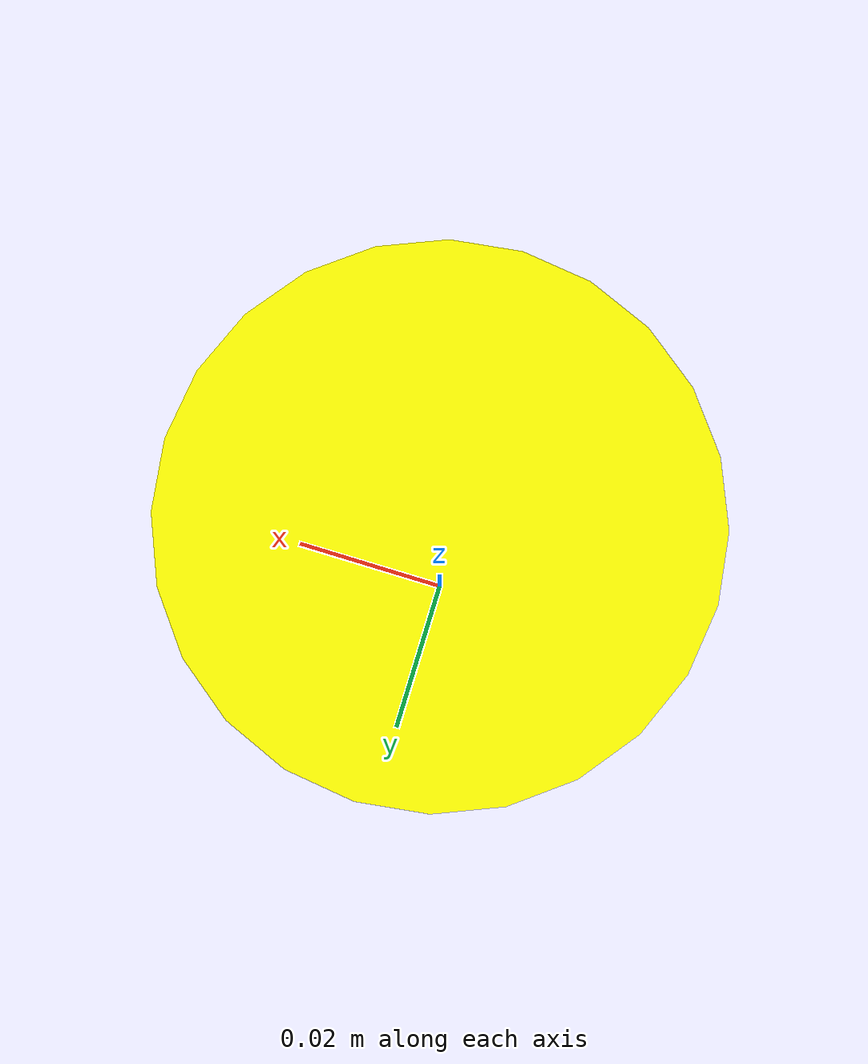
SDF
<?xml version="1.0" ?>
<sdf version="1.9">
  <model name="string_obstacle">
    <static>true</static>
    <link name="link">
      <!-- Black bottom: 0.0 to 0.05m -->
      <visual name="visual_bottom">
        <pose>0 0 0.025 0 0 0</pose>
        <geometry>
          <cylinder>
            <radius>0.002</radius>
            <length>0.05</length>
          </cylinder>
        </geometry>
        <material>
          <ambient>0 0 0 1</ambient>
          <diffuse>0 0 0 1</diffuse>
        </material>
      </visual>
      <!-- Yellow strip: 0.05 to 0.08m, 0.05m wide (diameter) -->
      <visual name="visual_yellow">
        <pose>0 0 0.065 0 0 0</pose>
        <geometry>
          <cylinder>
            <radius>0.025</radius>
            <length>0.03</length>
          </cylinder>
        </geometry>
        <material>
          <ambient>0.9 0.9 0.0 1</ambient>
          <diffuse>1.0 1.0 0.0 1</diffuse>
        </material>
      </visual>
      <collision name="collision">
        <pose>0 0 0.04 0 0 0</pose>
        <geometry>
          <cylinder>
            <radius>0.025</radius>
            <length>0.08</length>
          </cylinder>
        </geometry>
      </collision>
    </link>
  </model>
</sdf>
